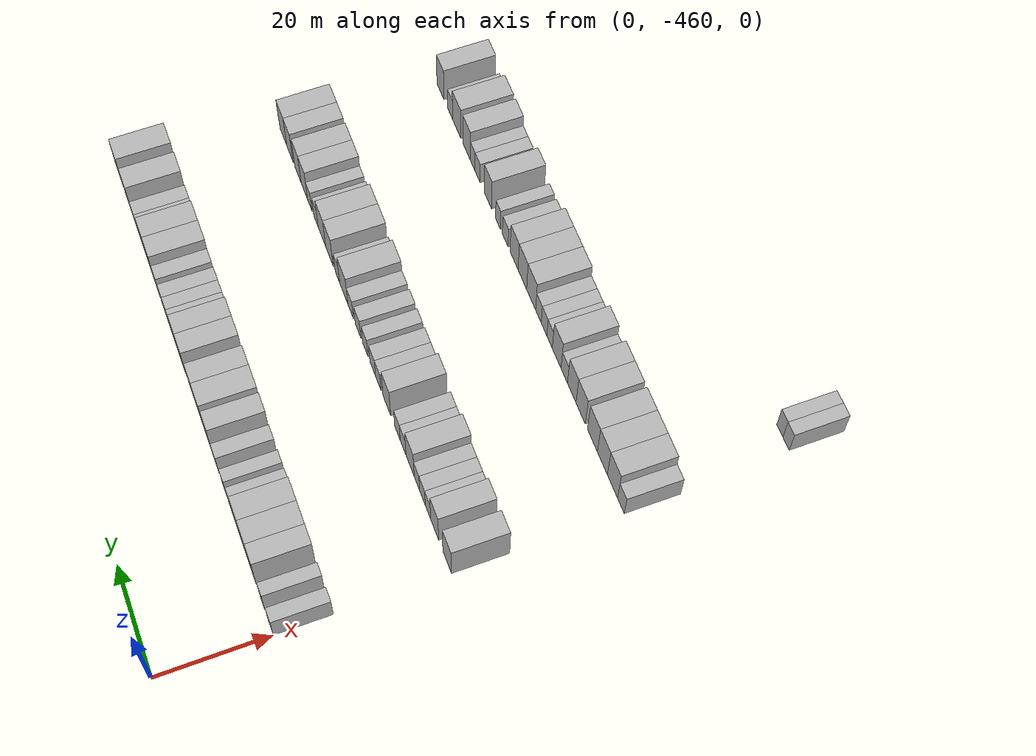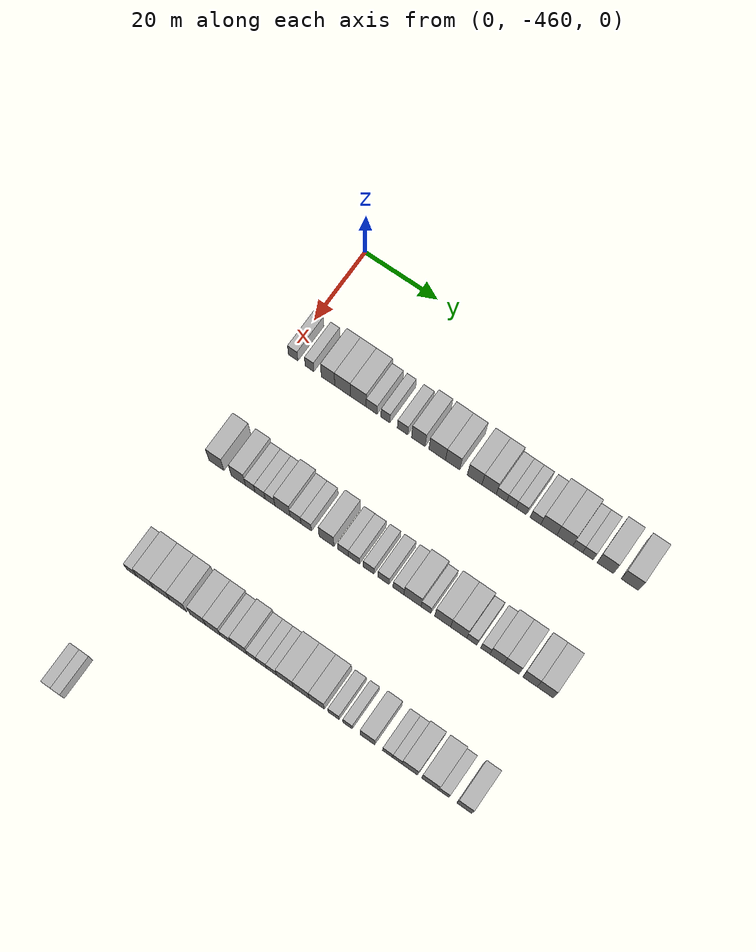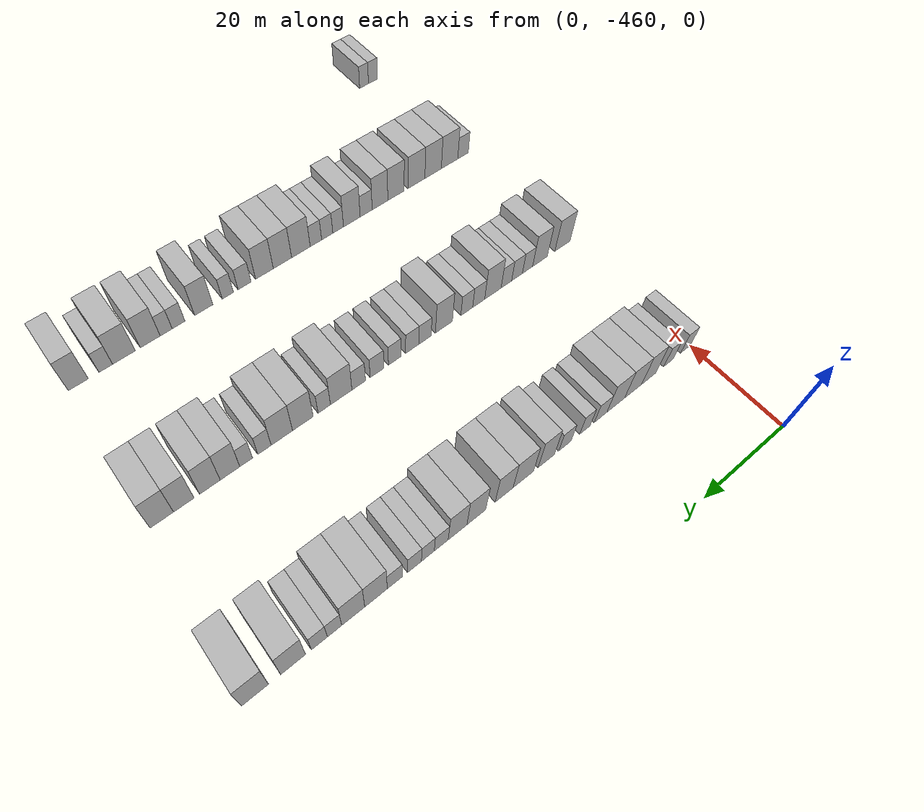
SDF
<sdf version="1.6">
 <world name="default">
  <model name="building_1">
   <static>1</static>
   <pose>25.0000 -458.7029 0 0.000000 0.000000 0.000000</pose>
   <link name="link">
    <pose>0 0 3.00 0 0 0</pose>
    <collision name="collision"><geometry><box><size>10.0000 2.5942 6.0000</size></box></geometry></collision>
    <visual name="visual">
     <cast_shadows>0</cast_shadows>
     <geometry><box><size>10.0000 2.5942 6.0000</size></box></geometry>
     <material>
      <script>
       <uri>model://HANNAS_wall/materials/scripts</uri>
       <uri>model://HANNAS_wall/materials/textures</uri>
       <name>vrc/HANNAS_wall</name>
      </script>
     </material>
    </visual>
   </link>
  </model>
  <model name="building_2">
   <static>1</static>
   <pose>25.0000 -454.1973 0 0.000000 0.000000 0.000000</pose>
   <link name="link">
    <pose>0 0 3.00 0 0 0</pose>
    <collision name="collision"><geometry><box><size>10.0000 2.4171 6.0000</size></box></geometry></collision>
    <visual name="visual">
     <cast_shadows>0</cast_shadows>
     <geometry><box><size>10.0000 2.4171 6.0000</size></box></geometry>
     <material>
      <script>
       <uri>model://HANNAS_wall/materials/scripts</uri>
       <uri>model://HANNAS_wall/materials/textures</uri>
       <name>vrc/HANNAS_wall</name>
      </script>
     </material>
    </visual>
   </link>
  </model>
  <model name="building_3">
   <static>1</static>
   <pose>25.0000 -449.1507 0 0.000000 0.000000 0.000000</pose>
   <link name="link">
    <pose>0 0 4.50 0 0 0</pose>
    <collision name="collision"><geometry><box><size>10.0000 3.6760 9.0000</size></box></geometry></collision>
    <visual name="visual">
     <cast_shadows>0</cast_shadows>
     <geometry><box><size>10.0000 3.6760 9.0000</size></box></geometry>
     <material>
      <script>
       <uri>model://HANNAS_wall/materials/scripts</uri>
       <uri>model://HANNAS_wall/materials/textures</uri>
       <name>vrc/HANNAS_wall</name>
      </script>
     </material>
    </visual>
   </link>
  </model>
  <model name="building_4">
   <static>1</static>
   <pose>25.0000 -445.1923 0 0.000000 0.000000 0.000000</pose>
   <link name="link">
    <pose>0 0 4.50 0 0 0</pose>
    <collision name="collision"><geometry><box><size>10.0000 4.2408 9.0000</size></box></geometry></collision>
    <visual name="visual">
     <cast_shadows>0</cast_shadows>
     <geometry><box><size>10.0000 4.2408 9.0000</size></box></geometry>
     <material>
      <script>
       <uri>model://HANNAS_wall/materials/scripts</uri>
       <uri>model://HANNAS_wall/materials/textures</uri>
       <name>vrc/HANNAS_wall</name>
      </script>
     </material>
    </visual>
   </link>
  </model>
  <model name="building_5">
   <static>1</static>
   <pose>25.0000 -440.9153 0 0.000000 0.000000 0.000000</pose>
   <link name="link">
    <pose>0 0 4.50 0 0 0</pose>
    <collision name="collision"><geometry><box><size>10.0000 4.3131 9.0000</size></box></geometry></collision>
    <visual name="visual">
     <cast_shadows>0</cast_shadows>
     <geometry><box><size>10.0000 4.3131 9.0000</size></box></geometry>
     <material>
      <script>
       <uri>model://HANNAS_wall/materials/scripts</uri>
       <uri>model://HANNAS_wall/materials/textures</uri>
       <name>vrc/HANNAS_wall</name>
      </script>
     </material>
    </visual>
   </link>
  </model>
  <model name="building_6">
   <static>1</static>
   <pose>25.0000 -437.2627 0 0.000000 0.000000 0.000000</pose>
   <link name="link">
    <pose>0 0 3.00 0 0 0</pose>
    <collision name="collision"><geometry><box><size>10.0000 2.9920 6.0000</size></box></geometry></collision>
    <visual name="visual">
     <cast_shadows>0</cast_shadows>
     <geometry><box><size>10.0000 2.9920 6.0000</size></box></geometry>
     <material>
      <script>
       <uri>model://HANNAS_wall/materials/scripts</uri>
       <uri>model://HANNAS_wall/materials/textures</uri>
       <name>vrc/HANNAS_wall</name>
      </script>
     </material>
    </visual>
   </link>
  </model>
  <model name="building_7">
   <static>1</static>
   <pose>25.0000 -433.5460 0 0.000000 0.000000 0.000000</pose>
   <link name="link">
    <pose>0 0 3.00 0 0 0</pose>
    <collision name="collision"><geometry><box><size>10.0000 2.4415 6.0000</size></box></geometry></collision>
    <visual name="visual">
     <cast_shadows>0</cast_shadows>
     <geometry><box><size>10.0000 2.4415 6.0000</size></box></geometry>
     <material>
      <script>
       <uri>model://HANNAS_wall/materials/scripts</uri>
       <uri>model://HANNAS_wall/materials/textures</uri>
       <name>vrc/HANNAS_wall</name>
      </script>
     </material>
    </visual>
   </link>
  </model>
  <model name="building_8">
   <static>1</static>
   <pose>25.0000 -428.9209 0 0.000000 0.000000 0.000000</pose>
   <link name="link">
    <pose>0 0 3.00 0 0 0</pose>
    <collision name="collision"><geometry><box><size>10.0000 2.8086 6.0000</size></box></geometry></collision>
    <visual name="visual">
     <cast_shadows>0</cast_shadows>
     <geometry><box><size>10.0000 2.8086 6.0000</size></box></geometry>
     <material>
      <script>
       <uri>model://HANNAS_wall/materials/scripts</uri>
       <uri>model://HANNAS_wall/materials/textures</uri>
       <name>vrc/HANNAS_wall</name>
      </script>
     </material>
    </visual>
   </link>
  </model>
  <model name="building_9">
   <static>1</static>
   <pose>25.0000 -424.6801 0 0.000000 0.000000 0.000000</pose>
   <link name="link">
    <pose>0 0 4.50 0 0 0</pose>
    <collision name="collision"><geometry><box><size>10.0000 3.6730 9.0000</size></box></geometry></collision>
    <visual name="visual">
     <cast_shadows>0</cast_shadows>
     <geometry><box><size>10.0000 3.6730 9.0000</size></box></geometry>
     <material>
      <script>
       <uri>model://HANNAS_wall/materials/scripts</uri>
       <uri>model://HANNAS_wall/materials/textures</uri>
       <name>vrc/HANNAS_wall</name>
      </script>
     </material>
    </visual>
   </link>
  </model>
  <model name="building_10">
   <static>1</static>
   <pose>25.0000 -419.6212 0 0.000000 0.000000 0.000000</pose>
   <link name="link">
    <pose>0 0 4.50 0 0 0</pose>
    <collision name="collision"><geometry><box><size>10.0000 4.4449 9.0000</size></box></geometry></collision>
    <visual name="visual">
     <cast_shadows>0</cast_shadows>
     <geometry><box><size>10.0000 4.4449 9.0000</size></box></geometry>
     <material>
      <script>
       <uri>model://HANNAS_wall/materials/scripts</uri>
       <uri>model://HANNAS_wall/materials/textures</uri>
       <name>vrc/HANNAS_wall</name>
      </script>
     </material>
    </visual>
   </link>
  </model>
  <model name="building_11">
   <static>1</static>
   <pose>25.0000 -415.4923 0 0.000000 0.000000 0.000000</pose>
   <link name="link">
    <pose>0 0 4.50 0 0 0</pose>
    <collision name="collision"><geometry><box><size>10.0000 3.8129 9.0000</size></box></geometry></collision>
    <visual name="visual">
     <cast_shadows>0</cast_shadows>
     <geometry><box><size>10.0000 3.8129 9.0000</size></box></geometry>
     <material>
      <script>
       <uri>model://HANNAS_wall/materials/scripts</uri>
       <uri>model://HANNAS_wall/materials/textures</uri>
       <name>vrc/HANNAS_wall</name>
      </script>
     </material>
    </visual>
   </link>
  </model>
  <model name="building_12">
   <static>1</static>
   <pose>25.0000 -409.6443 0 0.000000 0.000000 0.000000</pose>
   <link name="link">
    <pose>0 0 4.50 0 0 0</pose>
    <collision name="collision"><geometry><box><size>10.0000 3.8831 9.0000</size></box></geometry></collision>
    <visual name="visual">
     <cast_shadows>0</cast_shadows>
     <geometry><box><size>10.0000 3.8831 9.0000</size></box></geometry>
     <material>
      <script>
       <uri>model://HANNAS_wall/materials/scripts</uri>
       <uri>model://HANNAS_wall/materials/textures</uri>
       <name>vrc/HANNAS_wall</name>
      </script>
     </material>
    </visual>
   </link>
  </model>
  <model name="building_13">
   <static>1</static>
   <pose>25.0000 -405.8026 0 0.000000 0.000000 0.000000</pose>
   <link name="link">
    <pose>0 0 4.50 0 0 0</pose>
    <collision name="collision"><geometry><box><size>10.0000 3.8004 9.0000</size></box></geometry></collision>
    <visual name="visual">
     <cast_shadows>0</cast_shadows>
     <geometry><box><size>10.0000 3.8004 9.0000</size></box></geometry>
     <material>
      <script>
       <uri>model://HANNAS_wall/materials/scripts</uri>
       <uri>model://HANNAS_wall/materials/textures</uri>
       <name>vrc/HANNAS_wall</name>
      </script>
     </material>
    </visual>
   </link>
  </model>
  <model name="building_14">
   <static>1</static>
   <pose>25.0000 -402.5235 0 0.000000 0.000000 0.000000</pose>
   <link name="link">
    <pose>0 0 3.00 0 0 0</pose>
    <collision name="collision"><geometry><box><size>10.0000 2.7578 6.0000</size></box></geometry></collision>
    <visual name="visual">
     <cast_shadows>0</cast_shadows>
     <geometry><box><size>10.0000 2.7578 6.0000</size></box></geometry>
     <material>
      <script>
       <uri>model://HANNAS_wall/materials/scripts</uri>
       <uri>model://HANNAS_wall/materials/textures</uri>
       <name>vrc/HANNAS_wall</name>
      </script>
     </material>
    </visual>
   </link>
  </model>
  <model name="building_15">
   <static>1</static>
   <pose>25.0000 -399.8916 0 0.000000 0.000000 0.000000</pose>
   <link name="link">
    <pose>0 0 3.00 0 0 0</pose>
    <collision name="collision"><geometry><box><size>10.0000 2.5060 6.0000</size></box></geometry></collision>
    <visual name="visual">
     <cast_shadows>0</cast_shadows>
     <geometry><box><size>10.0000 2.5060 6.0000</size></box></geometry>
     <material>
      <script>
       <uri>model://HANNAS_wall/materials/scripts</uri>
       <uri>model://HANNAS_wall/materials/textures</uri>
       <name>vrc/HANNAS_wall</name>
      </script>
     </material>
    </visual>
   </link>
  </model>
  <model name="building_16">
   <static>1</static>
   <pose>25.0000 -397.3021 0 0.000000 0.000000 0.000000</pose>
   <link name="link">
    <pose>0 0 3.00 0 0 0</pose>
    <collision name="collision"><geometry><box><size>10.0000 2.6730 6.0000</size></box></geometry></collision>
    <visual name="visual">
     <cast_shadows>0</cast_shadows>
     <geometry><box><size>10.0000 2.6730 6.0000</size></box></geometry>
     <material>
      <script>
       <uri>model://HANNAS_wall/materials/scripts</uri>
       <uri>model://HANNAS_wall/materials/textures</uri>
       <name>vrc/HANNAS_wall</name>
      </script>
     </material>
    </visual>
   </link>
  </model>
  <model name="building_17">
   <static>1</static>
   <pose>25.0000 -393.5433 0 0.000000 0.000000 0.000000</pose>
   <link name="link">
    <pose>0 0 3.00 0 0 0</pose>
    <collision name="collision"><geometry><box><size>10.0000 2.8446 6.0000</size></box></geometry></collision>
    <visual name="visual">
     <cast_shadows>0</cast_shadows>
     <geometry><box><size>10.0000 2.8446 6.0000</size></box></geometry>
     <material>
      <script>
       <uri>model://HANNAS_wall/materials/scripts</uri>
       <uri>model://HANNAS_wall/materials/textures</uri>
       <name>vrc/HANNAS_wall</name>
      </script>
     </material>
    </visual>
   </link>
  </model>
  <model name="building_18">
   <static>1</static>
   <pose>25.0000 -390.0442 0 0.000000 0.000000 0.000000</pose>
   <link name="link">
    <pose>0 0 4.50 0 0 0</pose>
    <collision name="collision"><geometry><box><size>10.0000 4.1536 9.0000</size></box></geometry></collision>
    <visual name="visual">
     <cast_shadows>0</cast_shadows>
     <geometry><box><size>10.0000 4.1536 9.0000</size></box></geometry>
     <material>
      <script>
       <uri>model://HANNAS_wall/materials/scripts</uri>
       <uri>model://HANNAS_wall/materials/textures</uri>
       <name>vrc/HANNAS_wall</name>
      </script>
     </material>
    </visual>
   </link>
  </model>
  <model name="building_19">
   <static>1</static>
   <pose>25.0000 -385.8917 0 0.000000 0.000000 0.000000</pose>
   <link name="link">
    <pose>0 0 4.50 0 0 0</pose>
    <collision name="collision"><geometry><box><size>10.0000 4.1514 9.0000</size></box></geometry></collision>
    <visual name="visual">
     <cast_shadows>0</cast_shadows>
     <geometry><box><size>10.0000 4.1514 9.0000</size></box></geometry>
     <material>
      <script>
       <uri>model://HANNAS_wall/materials/scripts</uri>
       <uri>model://HANNAS_wall/materials/textures</uri>
       <name>vrc/HANNAS_wall</name>
      </script>
     </material>
    </visual>
   </link>
  </model>
  <model name="building_20">
   <static>1</static>
   <pose>25.0000 -382.5422 0 0.000000 0.000000 0.000000</pose>
   <link name="link">
    <pose>0 0 3.00 0 0 0</pose>
    <collision name="collision"><geometry><box><size>10.0000 2.5477 6.0000</size></box></geometry></collision>
    <visual name="visual">
     <cast_shadows>0</cast_shadows>
     <geometry><box><size>10.0000 2.5477 6.0000</size></box></geometry>
     <material>
      <script>
       <uri>model://HANNAS_wall/materials/scripts</uri>
       <uri>model://HANNAS_wall/materials/textures</uri>
       <name>vrc/HANNAS_wall</name>
      </script>
     </material>
    </visual>
   </link>
  </model>
  <model name="building_21">
   <static>1</static>
   <pose>25.0000 -379.8724 0 0.000000 0.000000 0.000000</pose>
   <link name="link">
    <pose>0 0 3.00 0 0 0</pose>
    <collision name="collision"><geometry><box><size>10.0000 2.7919 6.0000</size></box></geometry></collision>
    <visual name="visual">
     <cast_shadows>0</cast_shadows>
     <geometry><box><size>10.0000 2.7919 6.0000</size></box></geometry>
     <material>
      <script>
       <uri>model://HANNAS_wall/materials/scripts</uri>
       <uri>model://HANNAS_wall/materials/textures</uri>
       <name>vrc/HANNAS_wall</name>
      </script>
     </material>
    </visual>
   </link>
  </model>
  <model name="building_22">
   <static>1</static>
   <pose>25.0000 -375.3553 0 0.000000 0.000000 0.000000</pose>
   <link name="link">
    <pose>0 0 4.50 0 0 0</pose>
    <collision name="collision"><geometry><box><size>10.0000 4.2422 9.0000</size></box></geometry></collision>
    <visual name="visual">
     <cast_shadows>0</cast_shadows>
     <geometry><box><size>10.0000 4.2422 9.0000</size></box></geometry>
     <material>
      <script>
       <uri>model://HANNAS_wall/materials/scripts</uri>
       <uri>model://HANNAS_wall/materials/textures</uri>
       <name>vrc/HANNAS_wall</name>
      </script>
     </material>
    </visual>
   </link>
  </model>
  <model name="building_23">
   <static>1</static>
   <pose>25.0000 -369.0118 0 0.000000 0.000000 0.000000</pose>
   <link name="link">
    <pose>0 0 4.50 0 0 0</pose>
    <collision name="collision"><geometry><box><size>10.0000 4.4448 9.0000</size></box></geometry></collision>
    <visual name="visual">
     <cast_shadows>0</cast_shadows>
     <geometry><box><size>10.0000 4.4448 9.0000</size></box></geometry>
     <material>
      <script>
       <uri>model://HANNAS_wall/materials/scripts</uri>
       <uri>model://HANNAS_wall/materials/textures</uri>
       <name>vrc/HANNAS_wall</name>
      </script>
     </material>
    </visual>
   </link>
  </model>
  <model name="building_225">
   <static>1</static>
   <pose>55.0000 -457.9518 0 0.000000 0.000000 0.000000</pose>
   <link name="link">
    <pose>0 0 4.50 0 0 0</pose>
    <collision name="collision"><geometry><box><size>10.0000 4.0964 9.0000</size></box></geometry></collision>
    <visual name="visual">
     <cast_shadows>0</cast_shadows>
     <geometry><box><size>10.0000 4.0964 9.0000</size></box></geometry>
     <material>
      <script>
       <uri>model://HANNAS_wall/materials/scripts</uri>
       <uri>model://HANNAS_wall/materials/textures</uri>
       <name>vrc/HANNAS_wall</name>
      </script>
     </material>
    </visual>
   </link>
  </model>
  <model name="building_226">
   <static>1</static>
   <pose>55.0000 -451.9804 0 0.000000 0.000000 0.000000</pose>
   <link name="link">
    <pose>0 0 4.50 0 0 0</pose>
    <collision name="collision"><geometry><box><size>10.0000 3.8463 9.0000</size></box></geometry></collision>
    <visual name="visual">
     <cast_shadows>0</cast_shadows>
     <geometry><box><size>10.0000 3.8463 9.0000</size></box></geometry>
     <material>
      <script>
       <uri>model://HANNAS_wall/materials/scripts</uri>
       <uri>model://HANNAS_wall/materials/textures</uri>
       <name>vrc/HANNAS_wall</name>
      </script>
     </material>
    </visual>
   </link>
  </model>
  <model name="building_227">
   <static>1</static>
   <pose>55.0000 -448.7484 0 0.000000 0.000000 0.000000</pose>
   <link name="link">
    <pose>0 0 3.00 0 0 0</pose>
    <collision name="collision"><geometry><box><size>10.0000 2.6178 6.0000</size></box></geometry></collision>
    <visual name="visual">
     <cast_shadows>0</cast_shadows>
     <geometry><box><size>10.0000 2.6178 6.0000</size></box></geometry>
     <material>
      <script>
       <uri>model://HANNAS_wall/materials/scripts</uri>
       <uri>model://HANNAS_wall/materials/textures</uri>
       <name>vrc/HANNAS_wall</name>
      </script>
     </material>
    </visual>
   </link>
  </model>
  <model name="building_228">
   <static>1</static>
   <pose>55.0000 -446.0626 0 0.000000 0.000000 0.000000</pose>
   <link name="link">
    <pose>0 0 3.00 0 0 0</pose>
    <collision name="collision"><geometry><box><size>10.0000 2.7537 6.0000</size></box></geometry></collision>
    <visual name="visual">
     <cast_shadows>0</cast_shadows>
     <geometry><box><size>10.0000 2.7537 6.0000</size></box></geometry>
     <material>
      <script>
       <uri>model://HANNAS_wall/materials/scripts</uri>
       <uri>model://HANNAS_wall/materials/textures</uri>
       <name>vrc/HANNAS_wall</name>
      </script>
     </material>
    </visual>
   </link>
  </model>
  <model name="building_229">
   <static>1</static>
   <pose>55.0000 -443.3618 0 0.000000 0.000000 0.000000</pose>
   <link name="link">
    <pose>0 0 3.00 0 0 0</pose>
    <collision name="collision"><geometry><box><size>10.0000 2.6479 6.0000</size></box></geometry></collision>
    <visual name="visual">
     <cast_shadows>0</cast_shadows>
     <geometry><box><size>10.0000 2.6479 6.0000</size></box></geometry>
     <material>
      <script>
       <uri>model://HANNAS_wall/materials/scripts</uri>
       <uri>model://HANNAS_wall/materials/textures</uri>
       <name>vrc/HANNAS_wall</name>
      </script>
     </material>
    </visual>
   </link>
  </model>
  <model name="building_230">
   <static>1</static>
   <pose>55.0000 -440.0084 0 0.000000 0.000000 0.000000</pose>
   <link name="link">
    <pose>0 0 4.50 0 0 0</pose>
    <collision name="collision"><geometry><box><size>10.0000 4.0589 9.0000</size></box></geometry></collision>
    <visual name="visual">
     <cast_shadows>0</cast_shadows>
     <geometry><box><size>10.0000 4.0589 9.0000</size></box></geometry>
     <material>
      <script>
       <uri>model://HANNAS_wall/materials/scripts</uri>
       <uri>model://HANNAS_wall/materials/textures</uri>
       <name>vrc/HANNAS_wall</name>
      </script>
     </material>
    </visual>
   </link>
  </model>
  <model name="building_231">
   <static>1</static>
   <pose>55.0000 -436.5120 0 0.000000 0.000000 0.000000</pose>
   <link name="link">
    <pose>0 0 3.00 0 0 0</pose>
    <collision name="collision"><geometry><box><size>10.0000 2.9339 6.0000</size></box></geometry></collision>
    <visual name="visual">
     <cast_shadows>0</cast_shadows>
     <geometry><box><size>10.0000 2.9339 6.0000</size></box></geometry>
     <material>
      <script>
       <uri>model://HANNAS_wall/materials/scripts</uri>
       <uri>model://HANNAS_wall/materials/textures</uri>
       <name>vrc/HANNAS_wall</name>
      </script>
     </material>
    </visual>
   </link>
  </model>
  <model name="building_232">
   <static>1</static>
   <pose>55.0000 -433.6285 0 0.000000 0.000000 0.000000</pose>
   <link name="link">
    <pose>0 0 3.00 0 0 0</pose>
    <collision name="collision"><geometry><box><size>10.0000 2.8331 6.0000</size></box></geometry></collision>
    <visual name="visual">
     <cast_shadows>0</cast_shadows>
     <geometry><box><size>10.0000 2.8331 6.0000</size></box></geometry>
     <material>
      <script>
       <uri>model://HANNAS_wall/materials/scripts</uri>
       <uri>model://HANNAS_wall/materials/textures</uri>
       <name>vrc/HANNAS_wall</name>
      </script>
     </material>
    </visual>
   </link>
  </model>
  <model name="building_233">
   <static>1</static>
   <pose>55.0000 -428.2213 0 0.000000 0.000000 0.000000</pose>
   <link name="link">
    <pose>0 0 4.50 0 0 0</pose>
    <collision name="collision"><geometry><box><size>10.0000 3.9813 9.0000</size></box></geometry></collision>
    <visual name="visual">
     <cast_shadows>0</cast_shadows>
     <geometry><box><size>10.0000 3.9813 9.0000</size></box></geometry>
     <material>
      <script>
       <uri>model://HANNAS_wall/materials/scripts</uri>
       <uri>model://HANNAS_wall/materials/textures</uri>
       <name>vrc/HANNAS_wall</name>
      </script>
     </material>
    </visual>
   </link>
  </model>
  <model name="building_234">
   <static>1</static>
   <pose>55.0000 -423.8207 0 0.000000 0.000000 0.000000</pose>
   <link name="link">
    <pose>0 0 3.00 0 0 0</pose>
    <collision name="collision"><geometry><box><size>10.0000 2.8198 6.0000</size></box></geometry></collision>
    <visual name="visual">
     <cast_shadows>0</cast_shadows>
     <geometry><box><size>10.0000 2.8198 6.0000</size></box></geometry>
     <material>
      <script>
       <uri>model://HANNAS_wall/materials/scripts</uri>
       <uri>model://HANNAS_wall/materials/textures</uri>
       <name>vrc/HANNAS_wall</name>
      </script>
     </material>
    </visual>
   </link>
  </model>
  <model name="building_235">
   <static>1</static>
   <pose>55.0000 -420.9158 0 0.000000 0.000000 0.000000</pose>
   <link name="link">
    <pose>0 0 3.00 0 0 0</pose>
    <collision name="collision"><geometry><box><size>10.0000 2.9899 6.0000</size></box></geometry></collision>
    <visual name="visual">
     <cast_shadows>0</cast_shadows>
     <geometry><box><size>10.0000 2.9899 6.0000</size></box></geometry>
     <material>
      <script>
       <uri>model://HANNAS_wall/materials/scripts</uri>
       <uri>model://HANNAS_wall/materials/textures</uri>
       <name>vrc/HANNAS_wall</name>
      </script>
     </material>
    </visual>
   </link>
  </model>
  <model name="building_236">
   <static>1</static>
   <pose>55.0000 -417.0132 0 0.000000 0.000000 0.000000</pose>
   <link name="link">
    <pose>0 0 3.00 0 0 0</pose>
    <collision name="collision"><geometry><box><size>10.0000 2.8155 6.0000</size></box></geometry></collision>
    <visual name="visual">
     <cast_shadows>0</cast_shadows>
     <geometry><box><size>10.0000 2.8155 6.0000</size></box></geometry>
     <material>
      <script>
       <uri>model://HANNAS_wall/materials/scripts</uri>
       <uri>model://HANNAS_wall/materials/textures</uri>
       <name>vrc/HANNAS_wall</name>
      </script>
     </material>
    </visual>
   </link>
  </model>
  <model name="building_237">
   <static>1</static>
   <pose>55.0000 -413.1092 0 0.000000 0.000000 0.000000</pose>
   <link name="link">
    <pose>0 0 3.00 0 0 0</pose>
    <collision name="collision"><geometry><box><size>10.0000 2.9924 6.0000</size></box></geometry></collision>
    <visual name="visual">
     <cast_shadows>0</cast_shadows>
     <geometry><box><size>10.0000 2.9924 6.0000</size></box></geometry>
     <material>
      <script>
       <uri>model://HANNAS_wall/materials/scripts</uri>
       <uri>model://HANNAS_wall/materials/textures</uri>
       <name>vrc/HANNAS_wall</name>
      </script>
     </material>
    </visual>
   </link>
  </model>
  <model name="building_238">
   <static>1</static>
   <pose>55.0000 -409.1626 0 0.000000 0.000000 0.000000</pose>
   <link name="link">
    <pose>0 0 3.00 0 0 0</pose>
    <collision name="collision"><geometry><box><size>10.0000 2.9008 6.0000</size></box></geometry></collision>
    <visual name="visual">
     <cast_shadows>0</cast_shadows>
     <geometry><box><size>10.0000 2.9008 6.0000</size></box></geometry>
     <material>
      <script>
       <uri>model://HANNAS_wall/materials/scripts</uri>
       <uri>model://HANNAS_wall/materials/textures</uri>
       <name>vrc/HANNAS_wall</name>
      </script>
     </material>
    </visual>
   </link>
  </model>
  <model name="building_239">
   <static>1</static>
   <pose>55.0000 -405.4636 0 0.000000 0.000000 0.000000</pose>
   <link name="link">
    <pose>0 0 4.50 0 0 0</pose>
    <collision name="collision"><geometry><box><size>10.0000 4.4972 9.0000</size></box></geometry></collision>
    <visual name="visual">
     <cast_shadows>0</cast_shadows>
     <geometry><box><size>10.0000 4.4972 9.0000</size></box></geometry>
     <material>
      <script>
       <uri>model://HANNAS_wall/materials/scripts</uri>
       <uri>model://HANNAS_wall/materials/textures</uri>
       <name>vrc/HANNAS_wall</name>
      </script>
     </material>
    </visual>
   </link>
  </model>
  <model name="building_240">
   <static>1</static>
   <pose>55.0000 -401.9369 0 0.000000 0.000000 0.000000</pose>
   <link name="link">
    <pose>0 0 3.00 0 0 0</pose>
    <collision name="collision"><geometry><box><size>10.0000 2.5563 6.0000</size></box></geometry></collision>
    <visual name="visual">
     <cast_shadows>0</cast_shadows>
     <geometry><box><size>10.0000 2.5563 6.0000</size></box></geometry>
     <material>
      <script>
       <uri>model://HANNAS_wall/materials/scripts</uri>
       <uri>model://HANNAS_wall/materials/textures</uri>
       <name>vrc/HANNAS_wall</name>
      </script>
     </material>
    </visual>
   </link>
  </model>
  <model name="building_241">
   <static>1</static>
   <pose>55.0000 -397.5749 0 0.000000 0.000000 0.000000</pose>
   <link name="link">
    <pose>0 0 4.50 0 0 0</pose>
    <collision name="collision"><geometry><box><size>10.0000 4.1676 9.0000</size></box></geometry></collision>
    <visual name="visual">
     <cast_shadows>0</cast_shadows>
     <geometry><box><size>10.0000 4.1676 9.0000</size></box></geometry>
     <material>
      <script>
       <uri>model://HANNAS_wall/materials/scripts</uri>
       <uri>model://HANNAS_wall/materials/textures</uri>
       <name>vrc/HANNAS_wall</name>
      </script>
     </material>
    </visual>
   </link>
  </model>
  <model name="building_242">
   <static>1</static>
   <pose>55.0000 -393.3844 0 0.000000 0.000000 0.000000</pose>
   <link name="link">
    <pose>0 0 4.50 0 0 0</pose>
    <collision name="collision"><geometry><box><size>10.0000 4.2135 9.0000</size></box></geometry></collision>
    <visual name="visual">
     <cast_shadows>0</cast_shadows>
     <geometry><box><size>10.0000 4.2135 9.0000</size></box></geometry>
     <material>
      <script>
       <uri>model://HANNAS_wall/materials/scripts</uri>
       <uri>model://HANNAS_wall/materials/textures</uri>
       <name>vrc/HANNAS_wall</name>
      </script>
     </material>
    </visual>
   </link>
  </model>
  <model name="building_243">
   <static>1</static>
   <pose>55.0000 -389.9809 0 0.000000 0.000000 0.000000</pose>
   <link name="link">
    <pose>0 0 3.00 0 0 0</pose>
    <collision name="collision"><geometry><box><size>10.0000 2.5934 6.0000</size></box></geometry></collision>
    <visual name="visual">
     <cast_shadows>0</cast_shadows>
     <geometry><box><size>10.0000 2.5934 6.0000</size></box></geometry>
     <material>
      <script>
       <uri>model://HANNAS_wall/materials/scripts</uri>
       <uri>model://HANNAS_wall/materials/textures</uri>
       <name>vrc/HANNAS_wall</name>
      </script>
     </material>
    </visual>
   </link>
  </model>
  <model name="building_244">
   <static>1</static>
   <pose>55.0000 -386.4732 0 0.000000 0.000000 0.000000</pose>
   <link name="link">
    <pose>0 0 3.00 0 0 0</pose>
    <collision name="collision"><geometry><box><size>10.0000 2.4220 6.0000</size></box></geometry></collision>
    <visual name="visual">
     <cast_shadows>0</cast_shadows>
     <geometry><box><size>10.0000 2.4220 6.0000</size></box></geometry>
     <material>
      <script>
       <uri>model://HANNAS_wall/materials/scripts</uri>
       <uri>model://HANNAS_wall/materials/textures</uri>
       <name>vrc/HANNAS_wall</name>
      </script>
     </material>
    </visual>
   </link>
  </model>
  <model name="building_245">
   <static>1</static>
   <pose>55.0000 -383.4247 0 0.000000 0.000000 0.000000</pose>
   <link name="link">
    <pose>0 0 4.50 0 0 0</pose>
    <collision name="collision"><geometry><box><size>10.0000 3.6748 9.0000</size></box></geometry></collision>
    <visual name="visual">
     <cast_shadows>0</cast_shadows>
     <geometry><box><size>10.0000 3.6748 9.0000</size></box></geometry>
     <material>
      <script>
       <uri>model://HANNAS_wall/materials/scripts</uri>
       <uri>model://HANNAS_wall/materials/textures</uri>
       <name>vrc/HANNAS_wall</name>
      </script>
     </material>
    </visual>
   </link>
  </model>
  <model name="building_246">
   <static>1</static>
   <pose>55.0000 -379.6927 0 0.000000 0.000000 0.000000</pose>
   <link name="link">
    <pose>0 0 4.50 0 0 0</pose>
    <collision name="collision"><geometry><box><size>10.0000 3.7893 9.0000</size></box></geometry></collision>
    <visual name="visual">
     <cast_shadows>0</cast_shadows>
     <geometry><box><size>10.0000 3.7893 9.0000</size></box></geometry>
     <material>
      <script>
       <uri>model://HANNAS_wall/materials/scripts</uri>
       <uri>model://HANNAS_wall/materials/textures</uri>
       <name>vrc/HANNAS_wall</name>
      </script>
     </material>
    </visual>
   </link>
  </model>
  <model name="building_247">
   <static>1</static>
   <pose>55.0000 -374.9636 0 0.000000 0.000000 0.000000</pose>
   <link name="link">
    <pose>0 0 4.50 0 0 0</pose>
    <collision name="collision"><geometry><box><size>10.0000 3.6689 9.0000</size></box></geometry></collision>
    <visual name="visual">
     <cast_shadows>0</cast_shadows>
     <geometry><box><size>10.0000 3.6689 9.0000</size></box></geometry>
     <material>
      <script>
       <uri>model://HANNAS_wall/materials/scripts</uri>
       <uri>model://HANNAS_wall/materials/textures</uri>
       <name>vrc/HANNAS_wall</name>
      </script>
     </material>
    </visual>
   </link>
  </model>
  <model name="building_248">
   <static>1</static>
   <pose>55.0000 -371.0693 0 0.000000 0.000000 0.000000</pose>
   <link name="link">
    <pose>0 0 4.50 0 0 0</pose>
    <collision name="collision"><geometry><box><size>10.0000 4.1198 9.0000</size></box></geometry></collision>
    <visual name="visual">
     <cast_shadows>0</cast_shadows>
     <geometry><box><size>10.0000 4.1198 9.0000</size></box></geometry>
     <material>
      <script>
       <uri>model://HANNAS_wall/materials/scripts</uri>
       <uri>model://HANNAS_wall/materials/textures</uri>
       <name>vrc/HANNAS_wall</name>
      </script>
     </material>
    </visual>
   </link>
  </model>
  <model name="building_468">
   <static>1</static>
   <pose>85.0000 -458.5514 0 0.000000 0.000000 0.000000</pose>
   <link name="link">
    <pose>0 0 3.00 0 0 0</pose>
    <collision name="collision"><geometry><box><size>10.0000 2.8972 6.0000</size></box></geometry></collision>
    <visual name="visual">
     <cast_shadows>0</cast_shadows>
     <geometry><box><size>10.0000 2.8972 6.0000</size></box></geometry>
     <material>
      <script>
       <uri>model://HANNAS_wall/materials/scripts</uri>
       <uri>model://HANNAS_wall/materials/textures</uri>
       <name>vrc/HANNAS_wall</name>
      </script>
     </material>
    </visual>
   </link>
  </model>
  <model name="building_469">
   <static>1</static>
   <pose>85.0000 -454.8855 0 0.000000 0.000000 0.000000</pose>
   <link name="link">
    <pose>0 0 4.50 0 0 0</pose>
    <collision name="collision"><geometry><box><size>10.0000 4.4346 9.0000</size></box></geometry></collision>
    <visual name="visual">
     <cast_shadows>0</cast_shadows>
     <geometry><box><size>10.0000 4.4346 9.0000</size></box></geometry>
     <material>
      <script>
       <uri>model://HANNAS_wall/materials/scripts</uri>
       <uri>model://HANNAS_wall/materials/textures</uri>
       <name>vrc/HANNAS_wall</name>
      </script>
     </material>
    </visual>
   </link>
  </model>
  <model name="building_470">
   <static>1</static>
   <pose>85.0000 -450.4744 0 0.000000 0.000000 0.000000</pose>
   <link name="link">
    <pose>0 0 4.50 0 0 0</pose>
    <collision name="collision"><geometry><box><size>10.0000 4.3876 9.0000</size></box></geometry></collision>
    <visual name="visual">
     <cast_shadows>0</cast_shadows>
     <geometry><box><size>10.0000 4.3876 9.0000</size></box></geometry>
     <material>
      <script>
       <uri>model://HANNAS_wall/materials/scripts</uri>
       <uri>model://HANNAS_wall/materials/textures</uri>
       <name>vrc/HANNAS_wall</name>
      </script>
     </material>
    </visual>
   </link>
  </model>
  <model name="building_471">
   <static>1</static>
   <pose>85.0000 -446.0832 0 0.000000 0.000000 0.000000</pose>
   <link name="link">
    <pose>0 0 4.50 0 0 0</pose>
    <collision name="collision"><geometry><box><size>10.0000 4.3947 9.0000</size></box></geometry></collision>
    <visual name="visual">
     <cast_shadows>0</cast_shadows>
     <geometry><box><size>10.0000 4.3947 9.0000</size></box></geometry>
     <material>
      <script>
       <uri>model://HANNAS_wall/materials/scripts</uri>
       <uri>model://HANNAS_wall/materials/textures</uri>
       <name>vrc/HANNAS_wall</name>
      </script>
     </material>
    </visual>
   </link>
  </model>
  <model name="building_472">
   <static>1</static>
   <pose>85.0000 -440.7981 0 0.000000 0.000000 0.000000</pose>
   <link name="link">
    <pose>0 0 4.50 0 0 0</pose>
    <collision name="collision"><geometry><box><size>10.0000 4.1756 9.0000</size></box></geometry></collision>
    <visual name="visual">
     <cast_shadows>0</cast_shadows>
     <geometry><box><size>10.0000 4.1756 9.0000</size></box></geometry>
     <material>
      <script>
       <uri>model://HANNAS_wall/materials/scripts</uri>
       <uri>model://HANNAS_wall/materials/textures</uri>
       <name>vrc/HANNAS_wall</name>
      </script>
     </material>
    </visual>
   </link>
  </model>
  <model name="building_473">
   <static>1</static>
   <pose>85.0000 -436.7442 0 0.000000 0.000000 0.000000</pose>
   <link name="link">
    <pose>0 0 4.50 0 0 0</pose>
    <collision name="collision"><geometry><box><size>10.0000 3.9322 9.0000</size></box></geometry></collision>
    <visual name="visual">
     <cast_shadows>0</cast_shadows>
     <geometry><box><size>10.0000 3.9322 9.0000</size></box></geometry>
     <material>
      <script>
       <uri>model://HANNAS_wall/materials/scripts</uri>
       <uri>model://HANNAS_wall/materials/textures</uri>
       <name>vrc/HANNAS_wall</name>
      </script>
     </material>
    </visual>
   </link>
  </model>
  <model name="building_474">
   <static>1</static>
   <pose>85.0000 -433.2888 0 0.000000 0.000000 0.000000</pose>
   <link name="link">
    <pose>0 0 3.00 0 0 0</pose>
    <collision name="collision"><geometry><box><size>10.0000 2.9786 6.0000</size></box></geometry></collision>
    <visual name="visual">
     <cast_shadows>0</cast_shadows>
     <geometry><box><size>10.0000 2.9786 6.0000</size></box></geometry>
     <material>
      <script>
       <uri>model://HANNAS_wall/materials/scripts</uri>
       <uri>model://HANNAS_wall/materials/textures</uri>
       <name>vrc/HANNAS_wall</name>
      </script>
     </material>
    </visual>
   </link>
  </model>
  <model name="building_475">
   <static>1</static>
   <pose>85.0000 -429.7755 0 0.000000 0.000000 0.000000</pose>
   <link name="link">
    <pose>0 0 4.50 0 0 0</pose>
    <collision name="collision"><geometry><box><size>10.0000 4.0479 9.0000</size></box></geometry></collision>
    <visual name="visual">
     <cast_shadows>0</cast_shadows>
     <geometry><box><size>10.0000 4.0479 9.0000</size></box></geometry>
     <material>
      <script>
       <uri>model://HANNAS_wall/materials/scripts</uri>
       <uri>model://HANNAS_wall/materials/textures</uri>
       <name>vrc/HANNAS_wall</name>
      </script>
     </material>
    </visual>
   </link>
  </model>
  <model name="building_476">
   <static>1</static>
   <pose>85.0000 -426.4694 0 0.000000 0.000000 0.000000</pose>
   <link name="link">
    <pose>0 0 3.00 0 0 0</pose>
    <collision name="collision"><geometry><box><size>10.0000 2.5643 6.0000</size></box></geometry></collision>
    <visual name="visual">
     <cast_shadows>0</cast_shadows>
     <geometry><box><size>10.0000 2.5643 6.0000</size></box></geometry>
     <material>
      <script>
       <uri>model://HANNAS_wall/materials/scripts</uri>
       <uri>model://HANNAS_wall/materials/textures</uri>
       <name>vrc/HANNAS_wall</name>
      </script>
     </material>
    </visual>
   </link>
  </model>
  <model name="building_477">
   <static>1</static>
   <pose>85.0000 -423.8614 0 0.000000 0.000000 0.000000</pose>
   <link name="link">
    <pose>0 0 3.00 0 0 0</pose>
    <collision name="collision"><geometry><box><size>10.0000 2.6517 6.0000</size></box></geometry></collision>
    <visual name="visual">
     <cast_shadows>0</cast_shadows>
     <geometry><box><size>10.0000 2.6517 6.0000</size></box></geometry>
     <material>
      <script>
       <uri>model://HANNAS_wall/materials/scripts</uri>
       <uri>model://HANNAS_wall/materials/textures</uri>
       <name>vrc/HANNAS_wall</name>
      </script>
     </material>
    </visual>
   </link>
  </model>
  <model name="building_478">
   <static>1</static>
   <pose>85.0000 -421.1959 0 0.000000 0.000000 0.000000</pose>
   <link name="link">
    <pose>0 0 3.00 0 0 0</pose>
    <collision name="collision"><geometry><box><size>10.0000 2.6795 6.0000</size></box></geometry></collision>
    <visual name="visual">
     <cast_shadows>0</cast_shadows>
     <geometry><box><size>10.0000 2.6795 6.0000</size></box></geometry>
     <material>
      <script>
       <uri>model://HANNAS_wall/materials/scripts</uri>
       <uri>model://HANNAS_wall/materials/textures</uri>
       <name>vrc/HANNAS_wall</name>
      </script>
     </material>
    </visual>
   </link>
  </model>
  <model name="building_479">
   <static>1</static>
   <pose>85.0000 -417.7071 0 0.000000 0.000000 0.000000</pose>
   <link name="link">
    <pose>0 0 4.50 0 0 0</pose>
    <collision name="collision"><geometry><box><size>10.0000 4.2981 9.0000</size></box></geometry></collision>
    <visual name="visual">
     <cast_shadows>0</cast_shadows>
     <geometry><box><size>10.0000 4.2981 9.0000</size></box></geometry>
     <material>
      <script>
       <uri>model://HANNAS_wall/materials/scripts</uri>
       <uri>model://HANNAS_wall/materials/textures</uri>
       <name>vrc/HANNAS_wall</name>
      </script>
     </material>
    </visual>
   </link>
  </model>
  <model name="building_480">
   <static>1</static>
   <pose>85.0000 -413.4778 0 0.000000 0.000000 0.000000</pose>
   <link name="link">
    <pose>0 0 4.50 0 0 0</pose>
    <collision name="collision"><geometry><box><size>10.0000 4.1605 9.0000</size></box></geometry></collision>
    <visual name="visual">
     <cast_shadows>0</cast_shadows>
     <geometry><box><size>10.0000 4.1605 9.0000</size></box></geometry>
     <material>
      <script>
       <uri>model://HANNAS_wall/materials/scripts</uri>
       <uri>model://HANNAS_wall/materials/textures</uri>
       <name>vrc/HANNAS_wall</name>
      </script>
     </material>
    </visual>
   </link>
  </model>
  <model name="building_481">
   <static>1</static>
   <pose>85.0000 -409.4199 0 0.000000 0.000000 0.000000</pose>
   <link name="link">
    <pose>0 0 4.50 0 0 0</pose>
    <collision name="collision"><geometry><box><size>10.0000 3.9553 9.0000</size></box></geometry></collision>
    <visual name="visual">
     <cast_shadows>0</cast_shadows>
     <geometry><box><size>10.0000 3.9553 9.0000</size></box></geometry>
     <material>
      <script>
       <uri>model://HANNAS_wall/materials/scripts</uri>
       <uri>model://HANNAS_wall/materials/textures</uri>
       <name>vrc/HANNAS_wall</name>
      </script>
     </material>
    </visual>
   </link>
  </model>
  <model name="building_482">
   <static>1</static>
   <pose>85.0000 -405.0205 0 0.000000 0.000000 0.000000</pose>
   <link name="link">
    <pose>0 0 3.00 0 0 0</pose>
    <collision name="collision"><geometry><box><size>10.0000 2.8434 6.0000</size></box></geometry></collision>
    <visual name="visual">
     <cast_shadows>0</cast_shadows>
     <geometry><box><size>10.0000 2.8434 6.0000</size></box></geometry>
     <material>
      <script>
       <uri>model://HANNAS_wall/materials/scripts</uri>
       <uri>model://HANNAS_wall/materials/textures</uri>
       <name>vrc/HANNAS_wall</name>
      </script>
     </material>
    </visual>
   </link>
  </model>
  <model name="building_483">
   <static>1</static>
   <pose>85.0000 -401.3984 0 0.000000 0.000000 0.000000</pose>
   <link name="link">
    <pose>0 0 3.00 0 0 0</pose>
    <collision name="collision"><geometry><box><size>10.0000 2.4009 6.0000</size></box></geometry></collision>
    <visual name="visual">
     <cast_shadows>0</cast_shadows>
     <geometry><box><size>10.0000 2.4009 6.0000</size></box></geometry>
     <material>
      <script>
       <uri>model://HANNAS_wall/materials/scripts</uri>
       <uri>model://HANNAS_wall/materials/textures</uri>
       <name>vrc/HANNAS_wall</name>
      </script>
     </material>
    </visual>
   </link>
  </model>
  <model name="building_484">
   <static>1</static>
   <pose>85.0000 -396.2897 0 0.000000 0.000000 0.000000</pose>
   <link name="link">
    <pose>0 0 4.50 0 0 0</pose>
    <collision name="collision"><geometry><box><size>10.0000 3.8166 9.0000</size></box></geometry></collision>
    <visual name="visual">
     <cast_shadows>0</cast_shadows>
     <geometry><box><size>10.0000 3.8166 9.0000</size></box></geometry>
     <material>
      <script>
       <uri>model://HANNAS_wall/materials/scripts</uri>
       <uri>model://HANNAS_wall/materials/textures</uri>
       <name>vrc/HANNAS_wall</name>
      </script>
     </material>
    </visual>
   </link>
  </model>
  <model name="building_485">
   <static>1</static>
   <pose>85.0000 -391.0725 0 0.000000 0.000000 0.000000</pose>
   <link name="link">
    <pose>0 0 3.00 0 0 0</pose>
    <collision name="collision"><geometry><box><size>10.0000 2.6177 6.0000</size></box></geometry></collision>
    <visual name="visual">
     <cast_shadows>0</cast_shadows>
     <geometry><box><size>10.0000 2.6177 6.0000</size></box></geometry>
     <material>
      <script>
       <uri>model://HANNAS_wall/materials/scripts</uri>
       <uri>model://HANNAS_wall/materials/textures</uri>
       <name>vrc/HANNAS_wall</name>
      </script>
     </material>
    </visual>
   </link>
  </model>
  <model name="building_486">
   <static>1</static>
   <pose>85.0000 -388.5543 0 0.000000 0.000000 0.000000</pose>
   <link name="link">
    <pose>0 0 3.00 0 0 0</pose>
    <collision name="collision"><geometry><box><size>10.0000 2.4188 6.0000</size></box></geometry></collision>
    <visual name="visual">
     <cast_shadows>0</cast_shadows>
     <geometry><box><size>10.0000 2.4188 6.0000</size></box></geometry>
     <material>
      <script>
       <uri>model://HANNAS_wall/materials/scripts</uri>
       <uri>model://HANNAS_wall/materials/textures</uri>
       <name>vrc/HANNAS_wall</name>
      </script>
     </material>
    </visual>
   </link>
  </model>
  <model name="building_487">
   <static>1</static>
   <pose>85.0000 -385.3594 0 0.000000 0.000000 0.000000</pose>
   <link name="link">
    <pose>0 0 4.50 0 0 0</pose>
    <collision name="collision"><geometry><box><size>10.0000 3.9710 9.0000</size></box></geometry></collision>
    <visual name="visual">
     <cast_shadows>0</cast_shadows>
     <geometry><box><size>10.0000 3.9710 9.0000</size></box></geometry>
     <material>
      <script>
       <uri>model://HANNAS_wall/materials/scripts</uri>
       <uri>model://HANNAS_wall/materials/textures</uri>
       <name>vrc/HANNAS_wall</name>
      </script>
     </material>
    </visual>
   </link>
  </model>
  <model name="building_488">
   <static>1</static>
   <pose>85.0000 -380.1791 0 0.000000 0.000000 0.000000</pose>
   <link name="link">
    <pose>0 0 4.50 0 0 0</pose>
    <collision name="collision"><geometry><box><size>10.0000 4.3896 9.0000</size></box></geometry></collision>
    <visual name="visual">
     <cast_shadows>0</cast_shadows>
     <geometry><box><size>10.0000 4.3896 9.0000</size></box></geometry>
     <material>
      <script>
       <uri>model://HANNAS_wall/materials/scripts</uri>
       <uri>model://HANNAS_wall/materials/textures</uri>
       <name>vrc/HANNAS_wall</name>
      </script>
     </material>
    </visual>
   </link>
  </model>
  <model name="building_489">
   <static>1</static>
   <pose>85.0000 -376.6805 0 0.000000 0.000000 0.000000</pose>
   <link name="link">
    <pose>0 0 3.00 0 0 0</pose>
    <collision name="collision"><geometry><box><size>10.0000 2.6076 6.0000</size></box></geometry></collision>
    <visual name="visual">
     <cast_shadows>0</cast_shadows>
     <geometry><box><size>10.0000 2.6076 6.0000</size></box></geometry>
     <material>
      <script>
       <uri>model://HANNAS_wall/materials/scripts</uri>
       <uri>model://HANNAS_wall/materials/textures</uri>
       <name>vrc/HANNAS_wall</name>
      </script>
     </material>
    </visual>
   </link>
  </model>
  <model name="building_490">
   <static>1</static>
   <pose>85.0000 -371.4997 0 0.000000 0.000000 0.000000</pose>
   <link name="link">
    <pose>0 0 4.50 0 0 0</pose>
    <collision name="collision"><geometry><box><size>10.0000 3.7541 9.0000</size></box></geometry></collision>
    <visual name="visual">
     <cast_shadows>0</cast_shadows>
     <geometry><box><size>10.0000 3.7541 9.0000</size></box></geometry>
     <material>
      <script>
       <uri>model://HANNAS_wall/materials/scripts</uri>
       <uri>model://HANNAS_wall/materials/textures</uri>
       <name>vrc/HANNAS_wall</name>
      </script>
     </material>
    </visual>
   </link>
  </model>
  <model name="building_677">
   <static>1</static>
   <pose>115.0000 -457.7325 0 0.000000 0.000000 0.000000</pose>
   <link name="link">
    <pose>0 0 3.00 0 0 0</pose>
    <collision name="collision"><geometry><box><size>10.0000 2.5350 6.0000</size></box></geometry></collision>
    <visual name="visual">
     <cast_shadows>0</cast_shadows>
     <geometry><box><size>10.0000 2.5350 6.0000</size></box></geometry>
     <material>
      <script>
       <uri>model://HANNAS_wall/materials/scripts</uri>
       <uri>model://HANNAS_wall/materials/textures</uri>
       <name>vrc/HANNAS_wall</name>
      </script>
     </material>
    </visual>
   </link>
  </model>
  <model name="building_678">
   <static>1</static>
   <pose>115.0000 -455.2324 0 0.000000 0.000000 0.000000</pose>
   <link name="link">
    <pose>0 0 3.00 0 0 0</pose>
    <collision name="collision"><geometry><box><size>10.0000 2.4652 6.0000</size></box></geometry></collision>
    <visual name="visual">
     <cast_shadows>0</cast_shadows>
     <geometry><box><size>10.0000 2.4652 6.0000</size></box></geometry>
     <material>
      <script>
       <uri>model://HANNAS_wall/materials/scripts</uri>
       <uri>model://HANNAS_wall/materials/textures</uri>
       <name>vrc/HANNAS_wall</name>
      </script>
     </material>
    </visual>
   </link>
  </model>
 </world>
</sdf>
